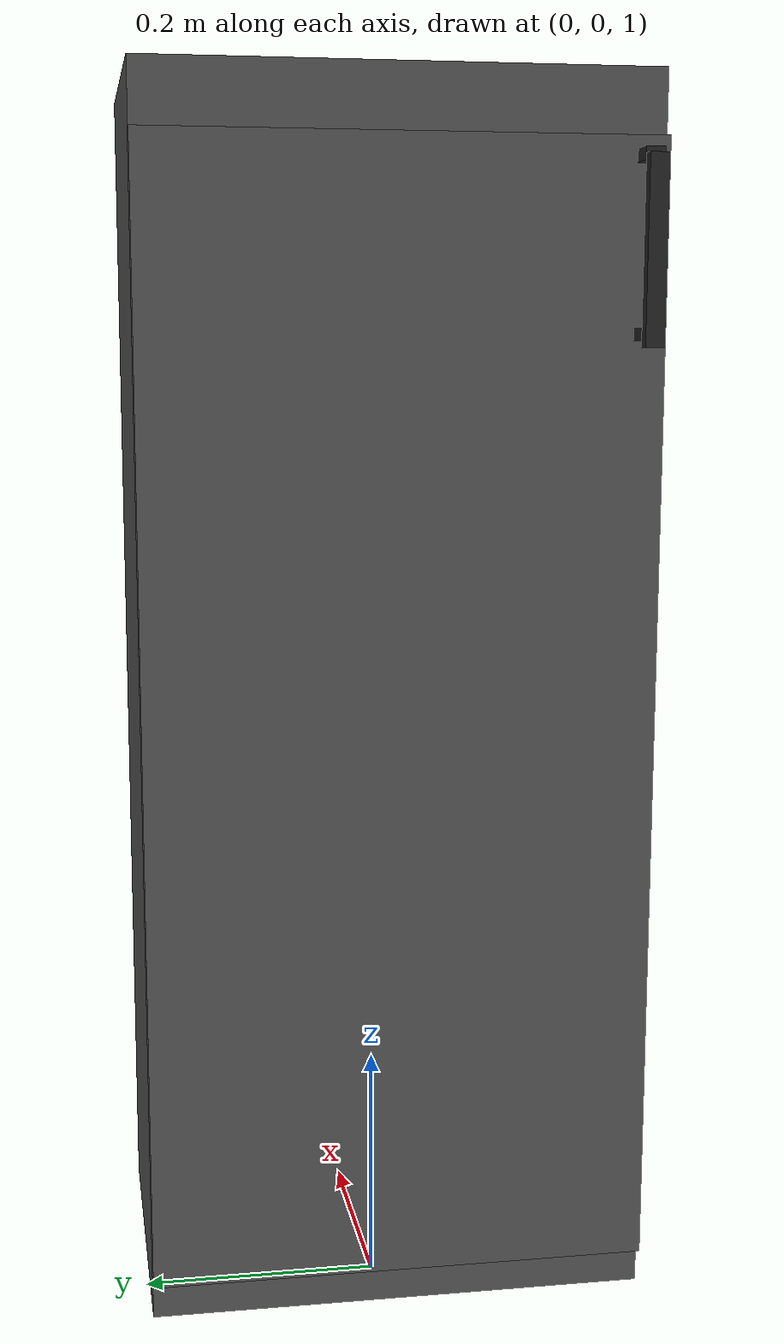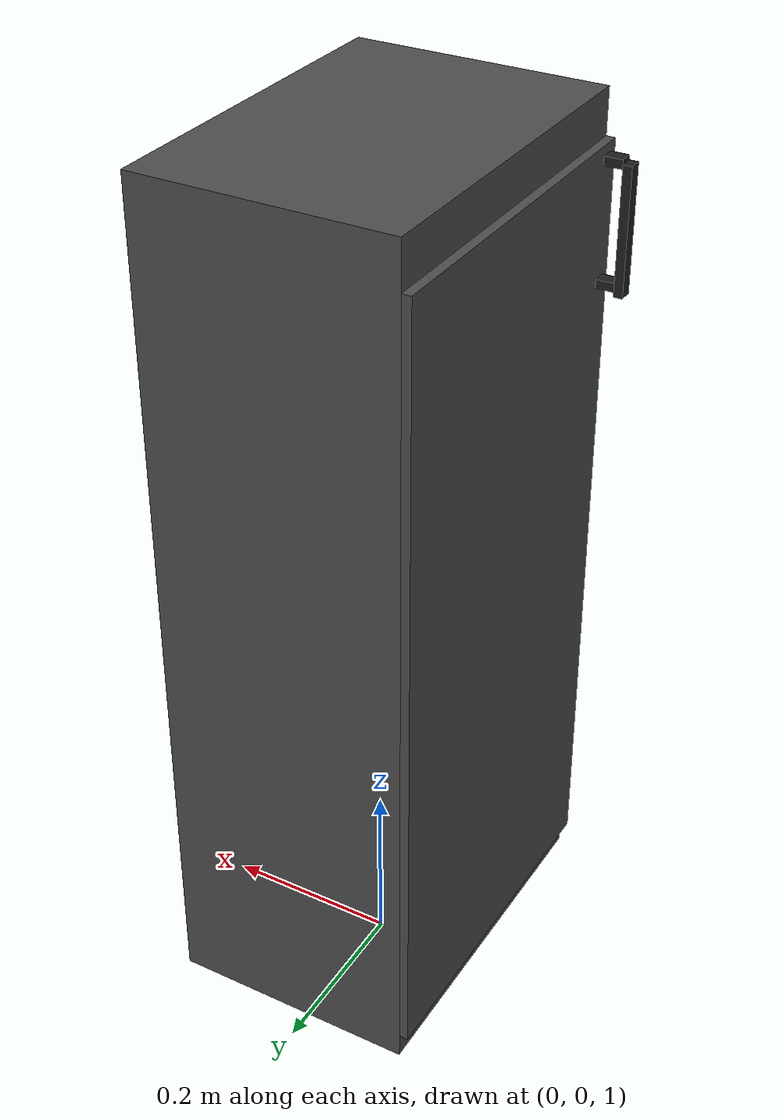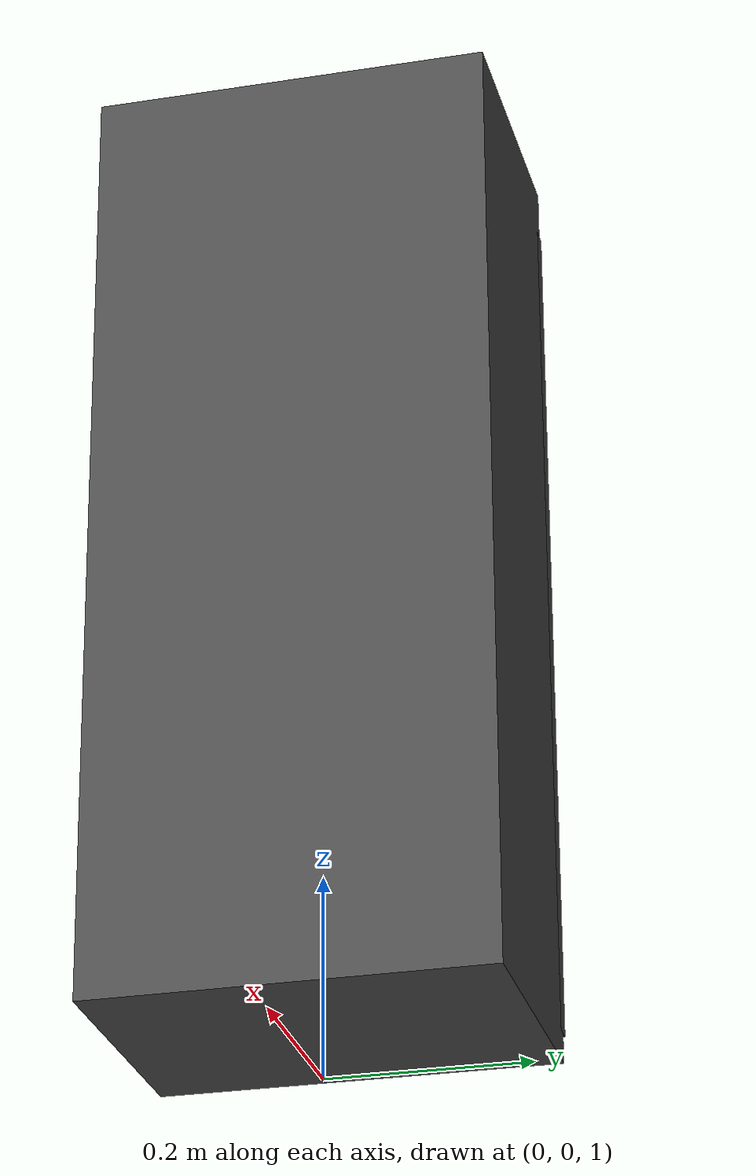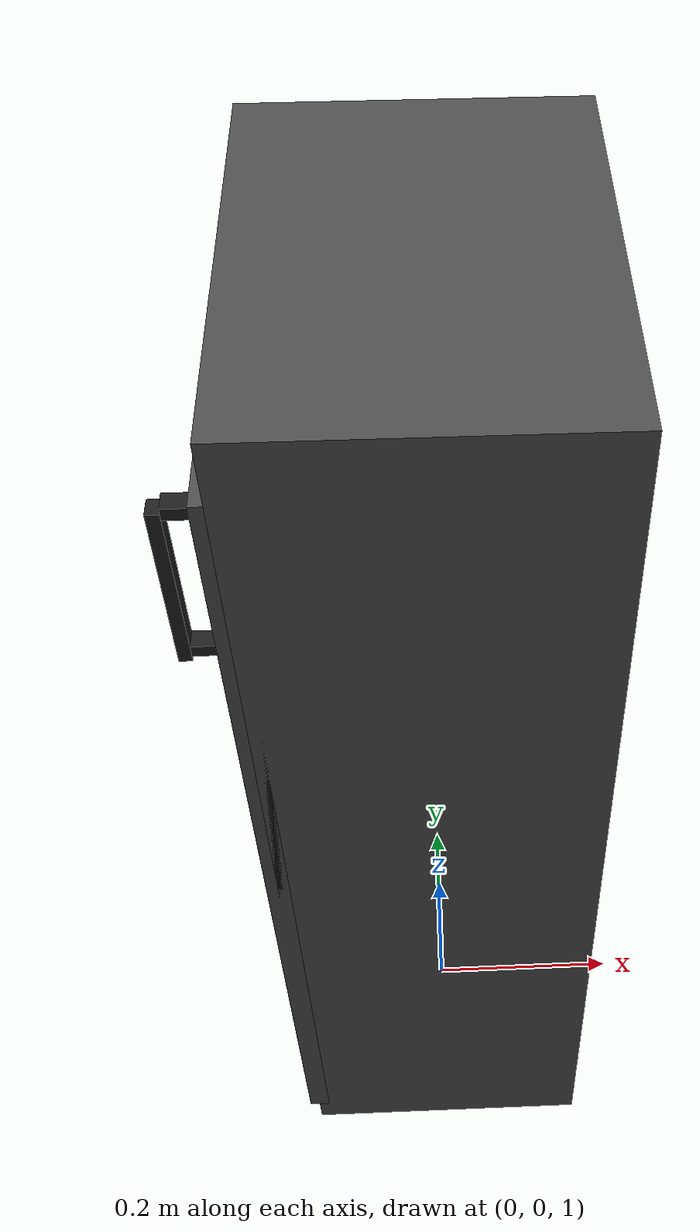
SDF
<?xml version='1.0'?>
<sdf version='1.6'>
    <model name='cabdoor'>
      <link name='dummy_link'>
        <pose frame=''>0 0 0 0 -0 0</pose>
        <collision name='dummy_link_collision'>
          <pose frame=''>0 0 0 0 -0 0</pose>
          <geometry>
            <box>
              <size>0 0 0</size>
            </box>
          </geometry>
          <max_contacts>10</max_contacts>
        </collision>
        <collision name='dummy_link_fixed_joint_lump__cabinet_structure_collision_1'>
          <pose frame=''>0 0 0.53 0 -0 0</pose>
          <geometry>
            <box>
              <size>0.28 0.4 0.97</size>
            </box>
          </geometry>
          <max_contacts>10</max_contacts>
        </collision>
        <collision name='dummy_link_fixed_joint_lump__cabinet_door_collision_2'>
          <pose frame=''>-0.14 0 0.52 0 -0 0</pose>
          <geometry>
            <box>
              <size>0.02 0.4 0.89</size>
            </box>
          </geometry>
          <max_contacts>10</max_contacts>
        </collision>
        <collision name='dummy_link_fixed_joint_lump__knob1_link_collision_3'>
          <pose frame=''>-0.155 -0.1825 0.95 0 -0 0</pose>
          <geometry>
            <box>
              <size>0.03 0.015 0.01</size>
            </box>
          </geometry>
          <max_contacts>10</max_contacts>
        </collision>
        <collision name='dummy_link_fixed_joint_lump__knob3_link_collision_4'>
          <pose frame=''>-0.175 -0.1825 0.88 0 -0 0</pose>
          <geometry>
            <box>
              <size>0.01 0.015 0.14</size>
            </box>
          </geometry>
          <max_contacts>10</max_contacts>
        </collision>
        <collision name='dummy_link_fixed_joint_lump__knob2_link_collision_5'>
          <pose frame=''>-0.155 -0.1825 0.82 0 -0 0</pose>
          <geometry>
            <box>
              <size>0.03 0.015 0.01</size>
            </box>
          </geometry>
          <max_contacts>10</max_contacts>
        </collision>
        <visual name='dummy_link_visual'>
          <pose frame=''>0 0 0 0 -0 0</pose>
          <geometry>
            <box>
              <size>0 0 0</size>
            </box>
          </geometry>
        </visual>
        <visual name='dummy_link_fixed_joint_lump__cabinet_structure_visual_1'>
          <pose frame=''>0 0 0.53 0 -0 0</pose>
          <geometry>
            <box>
              <size>0.28 0.4 0.97</size>
            </box>
          </geometry>
          <material>
            <script>
              <name>Gazebo/DarkGrey</name>
              <uri>file://media/materials/scripts/gazebo.material</uri>
            </script>
            <emissive>0.05 0.05 0.05 1</emissive>
          </material>
        </visual>
        <visual name='dummy_link_fixed_joint_lump__cabinet_door_visual_2'>
          <pose frame=''>-0.14 0 0.52 0 -0 0</pose>
          <geometry>
            <box>
              <size>0.02 0.4 0.89</size>
            </box>
          </geometry>
          <material>
            <script>
              <name>Gazebo/DarkGrey</name>
              <uri>file://media/materials/scripts/gazebo.material</uri>
            </script>
            <emissive>0.05 0.05 0.05 1</emissive>
          </material>
        </visual>
        <visual name='dummy_link_fixed_joint_lump__knob1_link_visual_3'>
          <pose frame=''>-0.155 -0.1825 0.95 0 -0 0</pose>
          <geometry>
            <box>
              <size>0.03 0.015 0.01</size>
            </box>
          </geometry>
          <material>
            <script>
              <name>Gazebo/Black</name>
              <uri>file://media/materials/scripts/gazebo.material</uri>
            </script>
          </material>
        </visual>
        <visual name='dummy_link_fixed_joint_lump__knob3_link_visual_4'>
          <pose frame=''>-0.175 -0.1825 0.88 0 -0 0</pose>
          <geometry>
            <box>
              <size>0.01 0.015 0.14</size>
            </box>
          </geometry>
          <material>
            <script>
              <name>Gazebo/Black</name>
              <uri>file://media/materials/scripts/gazebo.material</uri>
            </script>
          </material>
        </visual>
        <visual name='dummy_link_fixed_joint_lump__knob2_link_visual_5'>
          <pose frame=''>-0.155 -0.1825 0.82 0 -0 0</pose>
          <geometry>
            <box>
              <size>0.03 0.015 0.01</size>
            </box>
          </geometry>
          <material>
            <script>
              <name>Gazebo/Black</name>
              <uri>file://media/materials/scripts/gazebo.material</uri>
            </script>
          </material>
        </visual>
        <self_collide>0</self_collide>
        <enable_wind>0</enable_wind>
        <kinematic>0</kinematic>
      </link>
      <static>1</static>
      <allow_auto_disable>1</allow_auto_disable>
      <pose frame=''>0 0 1 0 -0 0</pose>
    </model>
</sdf>
